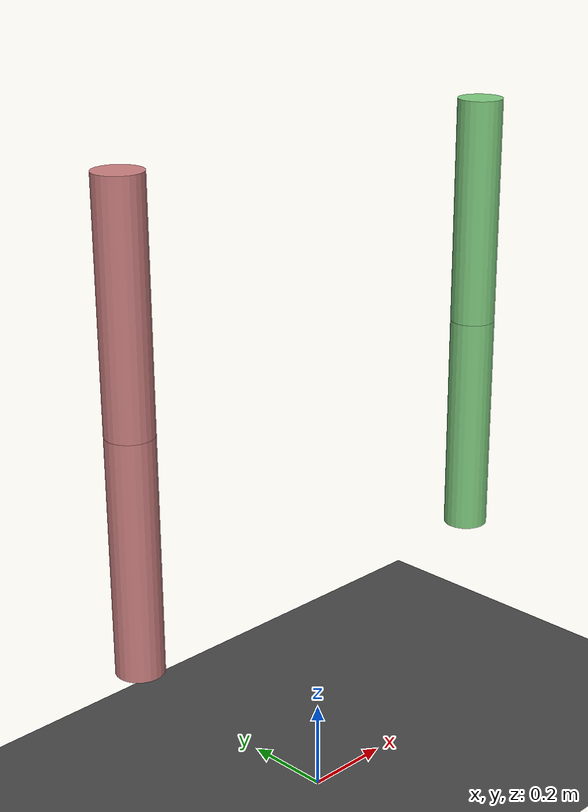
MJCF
<!-- a basic model allowing to test computation of the distance between to center of rotation
see src_py/uncertainty/cor_distance.py -->
<mujoco>
    <asset>
        <texture type="skybox" builtin="gradient" rgb1=".6 .6 .9" rgb2="0 0 0" width="512" height="512"/>

        <texture name="texplane" type="2d" builtin="checker" rgb1=".25 .25 .25" rgb2=".3 .3 .3" width="512" height="512" mark="cross" markrgb=".8 .8 .8"/>
        <material name="matplane" reflectance=".3" texture="texplane" texrepeat="1 1" texuniform="true"/>
    </asset>

    <default>
        <joint damping=".1"/>
        <default class="arm_l">
            <geom rgba="0.8 0.5 0.5 1"/>
        </default>
        <default class="arm_r">
            <geom rgba="0.5 0.8 0.5 1"/>
        </default>
    </default>

    <worldbody>
        <geom name="floor" pos="0 0 0" size="0 0 1" type="plane" material="matplane"/>
        <light directional="true" diffuse=".8 .8 .8" specular=".2 .2 .2" pos="0 0 5" dir="0 0 -1"/>

        <body name="u_arm_l" pos="-.5 0 1.5" childclass="arm_l">
            <geom type="cylinder" fromto="0 0 0 0 0 -.5" size=".05"/>

            <joint name="shoulder_l" type="hinge" axis="0 1 0" limited="true" range="-90 90"/>

            <body name="l_arm_l" pos="0 0 -.5">
                <geom type="cylinder" fromto="0 0 0 0 0 -.5" size=".05"/>

                <joint name="elbow_l" type="hinge" axis="0 1 0" limited="true" range="-90 90"/>
            </body>
        </body>

        <body name="u_arm_r" pos=".5 0 1.5" childclass="arm_r">
            <geom type="cylinder" fromto="0 0 0 0 0 -.5" size=".05"/>

            <joint name="shoulder_r" type="hinge" axis="0 1 0" limited="true" range="-90 90"/>

            <body name="l_arm_r" pos="0 0 -.5">
                <geom type="cylinder" fromto="0 0 0 0 0 -.5" size=".05"/>

                <joint name="elbow_r" type="hinge" axis="0 1 0" limited="true" range="-90 90"/>
            </body>
        </body>
    </worldbody>
</mujoco>
